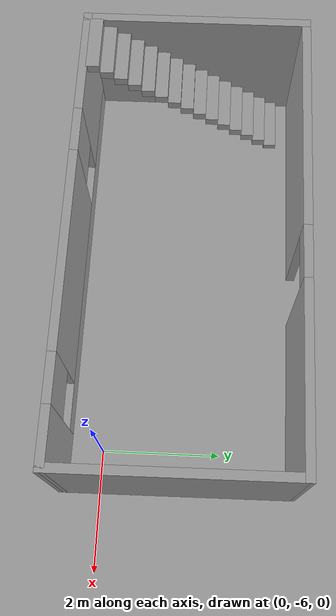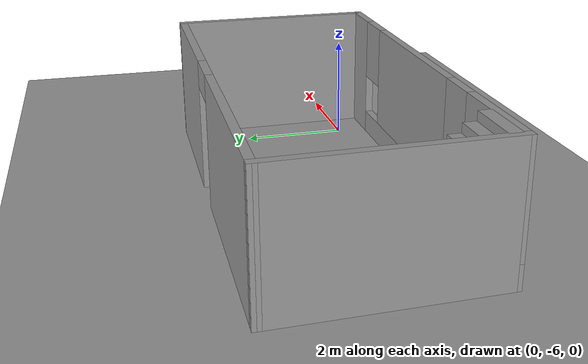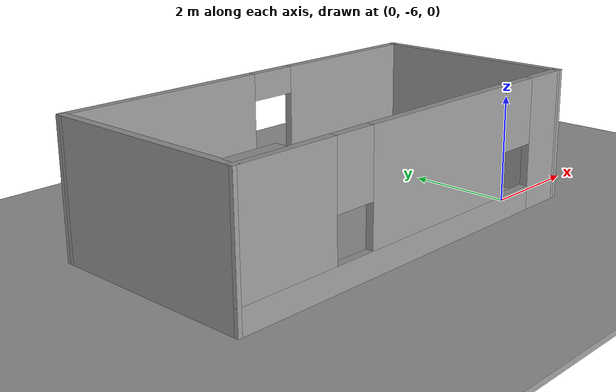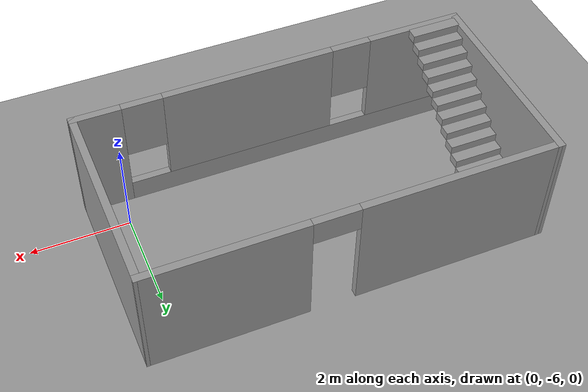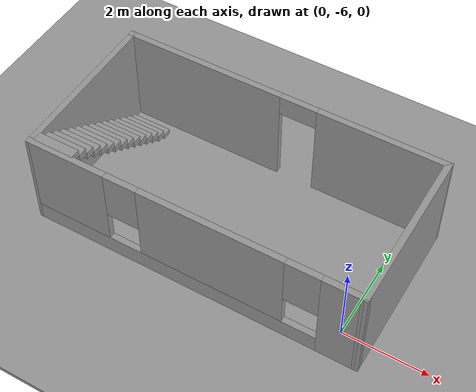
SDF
<sdf version="1.7">
 <world name="default">
  <light name="sun" type="directional">
   <pose>0 0 10 0 -0 0</pose>
   <diffuse>0.8 0.8 0.8 1</diffuse>
   <specular>0.2 0.2 0.2 1</specular>
   <attenuation>
    <range>1000</range>
    <constant>0.9</constant>
    <linear>0.01</linear>
    <quadratic>0.001</quadratic>
   </attenuation>
   <direction>-0.5 0.1 -0.9</direction>
   <spot><inner_angle>0</inner_angle><outer_angle>0</outer_angle><falloff>0</falloff></spot>
  </light>
  <model name="ground_plane">
   <static>1</static>
   <link name="link">
    <collision name="collision">
     <geometry><plane><normal>0 0 1</normal><size>100 100</size></plane></geometry>
     <surface>
      <contact><collide_bitmask>65535</collide_bitmask></contact>
      <friction><ode><mu>100</mu><mu2>50</mu2></ode></friction>
     </surface>
    </collision>
    <visual name="visual">
     <cast_shadows>0</cast_shadows>
     <geometry><plane><normal>0 0 1</normal><size>100 100</size></plane></geometry>
     <material>
      <script><uri>file://media/materials/scripts/gazebo.material</uri><name>Gazebo/Grey</name></script>
     </material>
    </visual>
   </link>
  </model>
  <gravity>0 0 -9.8</gravity>
  <magnetic_field>6e-06 2.3e-05 -4.2e-05</magnetic_field>
  <atmosphere type="adiabatic"/>
  <physics type="ode">
   <max_step_size>0.001</max_step_size>
   <real_time_factor>1</real_time_factor>
   <real_time_update_rate>1000</real_time_update_rate>
  </physics>
  <scene><ambient>0.4 0.4 0.4 1</ambient><background>0.7 0.7 0.7 1</background><shadows>1</shadows></scene>
  <spherical_coordinates>
   <surface_model>EARTH_WGS84</surface_model>
   <latitude_deg>0</latitude_deg>
   <longitude_deg>0</longitude_deg>
   <elevation>0</elevation>
   <heading_deg>0</heading_deg>
  </spherical_coordinates>
  <light name="sun" type="directional">
   <pose>0.88028 -1.99699 10 0 -0 0</pose>
   <diffuse>0.8 0.8 0.8 1</diffuse>
   <specular>0.2 0.2 0.2 1</specular>
   <attenuation>
    <range>1000</range>
    <constant>0.9</constant>
    <linear>0.01</linear>
    <quadratic>0.001</quadratic>
   </attenuation>
   <direction>-0.5 0.1 -0.9</direction>
  </light>
  <light name="sun" type="directional">
   <pose>2.79854 -1.5244 10 0 -0 0</pose>
   <diffuse>0.8 0.8 0.8 1</diffuse>
   <specular>0.2 0.2 0.2 1</specular>
   <attenuation>
    <range>1000</range>
    <constant>0.9</constant>
    <linear>0.01</linear>
    <quadratic>0.001</quadratic>
   </attenuation>
   <direction>-0.5 0.1 -0.9</direction>
  </light>
  <model name="ground_plane_0">
   <static>1</static>
   <link name="link">
    <collision name="collision">
     <geometry><plane><normal>0 0 1</normal><size>100 100</size></plane></geometry>
     <surface>
      <contact><collide_bitmask>65535</collide_bitmask></contact>
      <friction><ode><mu>100</mu><mu2>50</mu2></ode></friction>
     </surface>
    </collision>
    <visual name="visual">
     <cast_shadows>0</cast_shadows>
     <geometry><plane><normal>0 0 1</normal><size>100 100</size></plane></geometry>
     <material>
      <script><uri>file://media/materials/scripts/gazebo.material</uri><name>Gazebo/Grey</name></script>
     </material>
    </visual>
   </link>
   <pose>-6.44939 0.368116 0 0 -0 0</pose>
  </model>
  <model name="0418">
   <pose>-3.28178 -3.34776 0 0 -0 0</pose>
   <link name="Stairs_1">
    <visual name="Stairs_1_Visual_0">
     <pose>-3.36673 0.159585 0.083333 0 -0 0</pose>
     <geometry><box><size>1 0.233333 0.166667</size></box></geometry>
     <material>
      <script><uri>file://media/materials/scripts/gazebo.material</uri><name>Gazebo/Grey</name></script>
      <ambient>1 1 1 1</ambient>
     </material>
     <meta><layer>0</layer></meta>
    </visual>
    <collision name="Stairs_1_Collision_0">
     <geometry><box><size>1 0.233333 0.166667</size></box></geometry>
     <pose>-3.36673 0.159585 0.083333 0 -0 0</pose>
    </collision>
    <visual name="Stairs_1_Visual_1">
     <pose>-3.36673 -0.073748 0.25 0 -0 0</pose>
     <geometry><box><size>1 0.233333 0.166667</size></box></geometry>
     <material>
      <script><uri>file://media/materials/scripts/gazebo.material</uri><name>Gazebo/Grey</name></script>
      <ambient>1 1 1 1</ambient>
     </material>
     <meta><layer>0</layer></meta>
    </visual>
    <collision name="Stairs_1_Collision_1">
     <geometry><box><size>1 0.233333 0.166667</size></box></geometry>
     <pose>-3.36673 -0.073748 0.25 0 -0 0</pose>
    </collision>
    <visual name="Stairs_1_Visual_2">
     <pose>-3.36673 -0.307081 0.416667 0 -0 0</pose>
     <geometry><box><size>1 0.233333 0.166667</size></box></geometry>
     <material>
      <script><uri>file://media/materials/scripts/gazebo.material</uri><name>Gazebo/Grey</name></script>
      <ambient>1 1 1 1</ambient>
     </material>
     <meta><layer>0</layer></meta>
    </visual>
    <collision name="Stairs_1_Collision_2">
     <geometry><box><size>1 0.233333 0.166667</size></box></geometry>
     <pose>-3.36673 -0.307081 0.416667 0 -0 0</pose>
    </collision>
    <visual name="Stairs_1_Visual_3">
     <pose>-3.36673 -0.540415 0.583333 0 -0 0</pose>
     <geometry><box><size>1 0.233333 0.166667</size></box></geometry>
     <material>
      <script><uri>file://media/materials/scripts/gazebo.material</uri><name>Gazebo/Grey</name></script>
      <ambient>1 1 1 1</ambient>
     </material>
     <meta><layer>0</layer></meta>
    </visual>
    <collision name="Stairs_1_Collision_3">
     <geometry><box><size>1 0.233333 0.166667</size></box></geometry>
     <pose>-3.36673 -0.540415 0.583333 0 -0 0</pose>
    </collision>
    <visual name="Stairs_1_Visual_4">
     <pose>-3.36673 -0.773748 0.75 0 -0 0</pose>
     <geometry><box><size>1 0.233333 0.166667</size></box></geometry>
     <material>
      <script><uri>file://media/materials/scripts/gazebo.material</uri><name>Gazebo/Grey</name></script>
      <ambient>1 1 1 1</ambient>
     </material>
     <meta><layer>0</layer></meta>
    </visual>
    <collision name="Stairs_1_Collision_4">
     <geometry><box><size>1 0.233333 0.166667</size></box></geometry>
     <pose>-3.36673 -0.773748 0.75 0 -0 0</pose>
    </collision>
    <visual name="Stairs_1_Visual_5">
     <pose>-3.36673 -1.00708 0.916667 0 -0 0</pose>
     <geometry><box><size>1 0.233333 0.166667</size></box></geometry>
     <material>
      <script><uri>file://media/materials/scripts/gazebo.material</uri><name>Gazebo/Grey</name></script>
      <ambient>1 1 1 1</ambient>
     </material>
     <meta><layer>0</layer></meta>
    </visual>
    <collision name="Stairs_1_Collision_5">
     <geometry><box><size>1 0.233333 0.166667</size></box></geometry>
     <pose>-3.36673 -1.00708 0.916667 0 -0 0</pose>
    </collision>
    <visual name="Stairs_1_Visual_6">
     <pose>-3.36673 -1.24042 1.08333 0 -0 0</pose>
     <geometry><box><size>1 0.233333 0.166667</size></box></geometry>
     <material>
      <script><uri>file://media/materials/scripts/gazebo.material</uri><name>Gazebo/Grey</name></script>
      <ambient>1 1 1 1</ambient>
     </material>
     <meta><layer>0</layer></meta>
    </visual>
    <collision name="Stairs_1_Collision_6">
     <geometry><box><size>1 0.233333 0.166667</size></box></geometry>
     <pose>-3.36673 -1.24042 1.08333 0 -0 0</pose>
    </collision>
    <visual name="Stairs_1_Visual_7">
     <pose>-3.36673 -1.47375 1.25 0 -0 0</pose>
     <geometry><box><size>1 0.233333 0.166667</size></box></geometry>
     <material>
      <script><uri>file://media/materials/scripts/gazebo.material</uri><name>Gazebo/Grey</name></script>
      <ambient>1 1 1 1</ambient>
     </material>
     <meta><layer>0</layer></meta>
    </visual>
    <collision name="Stairs_1_Collision_7">
     <geometry><box><size>1 0.233333 0.166667</size></box></geometry>
     <pose>-3.36673 -1.47375 1.25 0 -0 0</pose>
    </collision>
    <visual name="Stairs_1_Visual_8">
     <pose>-3.36673 -1.70708 1.41667 0 -0 0</pose>
     <geometry><box><size>1 0.233333 0.166667</size></box></geometry>
     <material>
      <script><uri>file://media/materials/scripts/gazebo.material</uri><name>Gazebo/Grey</name></script>
      <ambient>1 1 1 1</ambient>
     </material>
     <meta><layer>0</layer></meta>
    </visual>
    <collision name="Stairs_1_Collision_8">
     <geometry><box><size>1 0.233333 0.166667</size></box></geometry>
     <pose>-3.36673 -1.70708 1.41667 0 -0 0</pose>
    </collision>
    <visual name="Stairs_1_Visual_9">
     <pose>-3.36673 -1.94042 1.58333 0 -0 0</pose>
     <geometry><box><size>1 0.233333 0.166667</size></box></geometry>
     <material>
      <script><uri>file://media/materials/scripts/gazebo.material</uri><name>Gazebo/Grey</name></script>
      <ambient>1 1 1 1</ambient>
     </material>
     <meta><layer>0</layer></meta>
    </visual>
    <collision name="Stairs_1_Collision_9">
     <geometry><box><size>1 0.233333 0.166667</size></box></geometry>
     <pose>-3.36673 -1.94042 1.58333 0 -0 0</pose>
    </collision>
    <visual name="Stairs_1_Visual_10">
     <pose>-3.36673 -2.17375 1.75 0 -0 0</pose>
     <geometry><box><size>1 0.233333 0.166667</size></box></geometry>
     <material>
      <script><uri>file://media/materials/scripts/gazebo.material</uri><name>Gazebo/Grey</name></script>
      <ambient>1 1 1 1</ambient>
     </material>
     <meta><layer>0</layer></meta>
    </visual>
    <collision name="Stairs_1_Collision_10">
     <geometry><box><size>1 0.233333 0.166667</size></box></geometry>
     <pose>-3.36673 -2.17375 1.75 0 -0 0</pose>
    </collision>
    <visual name="Stairs_1_Visual_11">
     <pose>-3.36673 -2.40708 1.91667 0 -0 0</pose>
     <geometry><box><size>1 0.233333 0.166667</size></box></geometry>
     <material>
      <script><uri>file://media/materials/scripts/gazebo.material</uri><name>Gazebo/Grey</name></script>
      <ambient>1 1 1 1</ambient>
     </material>
     <meta><layer>0</layer></meta>
    </visual>
    <collision name="Stairs_1_Collision_11">
     <geometry><box><size>1 0.233333 0.166667</size></box></geometry>
     <pose>-3.36673 -2.40708 1.91667 0 -0 0</pose>
    </collision>
    <visual name="Stairs_1_Visual_12">
     <pose>-3.36673 -2.64041 2.08333 0 -0 0</pose>
     <geometry><box><size>1 0.233333 0.166667</size></box></geometry>
     <material>
      <script><uri>file://media/materials/scripts/gazebo.material</uri><name>Gazebo/Grey</name></script>
      <ambient>1 1 1 1</ambient>
     </material>
     <meta><layer>0</layer></meta>
    </visual>
    <collision name="Stairs_1_Collision_12">
     <geometry><box><size>1 0.233333 0.166667</size></box></geometry>
     <pose>-3.36673 -2.64041 2.08333 0 -0 0</pose>
    </collision>
    <visual name="Stairs_1_Visual_13">
     <pose>-3.36673 -2.87375 2.25 0 -0 0</pose>
     <geometry><box><size>1 0.233333 0.166667</size></box></geometry>
     <material>
      <script><uri>file://media/materials/scripts/gazebo.material</uri><name>Gazebo/Grey</name></script>
      <ambient>1 1 1 1</ambient>
     </material>
     <meta><layer>0</layer></meta>
    </visual>
    <collision name="Stairs_1_Collision_13">
     <geometry><box><size>1 0.233333 0.166667</size></box></geometry>
     <pose>-3.36673 -2.87375 2.25 0 -0 0</pose>
    </collision>
    <visual name="Stairs_1_Visual_14">
     <pose>-3.36673 -3.10708 2.41667 0 -0 0</pose>
     <geometry><box><size>1 0.233333 0.166667</size></box></geometry>
     <material>
      <script><uri>file://media/materials/scripts/gazebo.material</uri><name>Gazebo/Grey</name></script>
      <ambient>1 1 1 1</ambient>
     </material>
     <meta><layer>0</layer></meta>
    </visual>
    <collision name="Stairs_1_Collision_14">
     <geometry><box><size>1 0.233333 0.166667</size></box></geometry>
     <pose>-3.36673 -3.10708 2.41667 0 -0 0</pose>
    </collision>
   </link>
   <link name="Wall_11">
    <pose>0.013225 -3.27224 0 0 -0 3.14159</pose>
    <visual name="Wall_11_Visual_0">
     <pose>-3.50548 0 1.25 0 -0 0</pose>
     <geometry><box><size>0.989033 0.15 2.5</size></box></geometry>
     <material>
      <script><uri>file://media/materials/scripts/gazebo.material</uri><name>Gazebo/Grey</name></script>
      <ambient>1 1 1 1</ambient>
     </material>
     <meta><layer>0</layer></meta>
    </visual>
    <collision name="Wall_11_Collision_0">
     <geometry><box><size>0.989033 0.15 2.5</size></box></geometry>
     <pose>-3.50548 0 1.25 0 -0 0</pose>
    </collision>
    <visual name="Wall_11_Visual_1">
     <pose>0.494516 0 0.25 0 -0 0</pose>
     <geometry><box><size>7.01097 0.15 0.5</size></box></geometry>
     <material>
      <script><uri>file://media/materials/scripts/gazebo.material</uri><name>Gazebo/Grey</name></script>
      <ambient>1 1 1 1</ambient>
     </material>
     <meta><layer>0</layer></meta>
    </visual>
    <collision name="Wall_11_Collision_1">
     <geometry><box><size>7.01097 0.15 0.5</size></box></geometry>
     <pose>0.494516 0 0.25 0 -0 0</pose>
    </collision>
    <visual name="Wall_11_Visual_2">
     <pose>-0.488355 0 1.5 0 -0 0</pose>
     <geometry><box><size>3.44523 0.15 2</size></box></geometry>
     <material>
      <script><uri>file://media/materials/scripts/gazebo.material</uri><name>Gazebo/Grey</name></script>
      <ambient>1 1 1 1</ambient>
     </material>
     <meta><layer>0</layer></meta>
    </visual>
    <collision name="Wall_11_Collision_2">
     <geometry><box><size>3.44523 0.15 2</size></box></geometry>
     <pose>-0.488355 0 1.5 0 -0 0</pose>
    </collision>
    <visual name="Wall_11_Visual_3">
     <pose>3.01713 0 1.5 0 -0 0</pose>
     <geometry><box><size>1.96574 0.15 2</size></box></geometry>
     <material>
      <script><uri>file://media/materials/scripts/gazebo.material</uri><name>Gazebo/Grey</name></script>
      <ambient>1 1 1 1</ambient>
     </material>
     <meta><layer>0</layer></meta>
    </visual>
    <collision name="Wall_11_Collision_3">
     <geometry><box><size>1.96574 0.15 2</size></box></geometry>
     <pose>3.01713 0 1.5 0 -0 0</pose>
    </collision>
    <visual name="Wall_11_Visual_4">
     <pose>-2.61097 0 1.9 0 -0 0</pose>
     <geometry><box><size>0.8 0.15 1.2</size></box></geometry>
     <material>
      <script><uri>file://media/materials/scripts/gazebo.material</uri><name>Gazebo/Grey</name></script>
      <ambient>1 1 1 1</ambient>
     </material>
     <meta><layer>0</layer></meta>
    </visual>
    <collision name="Wall_11_Collision_4">
     <geometry><box><size>0.8 0.15 1.2</size></box></geometry>
     <pose>-2.61097 0 1.9 0 -0 0</pose>
    </collision>
    <visual name="Wall_11_Visual_5">
     <pose>1.63426 0 1.9 0 -0 0</pose>
     <geometry><box><size>0.8 0.15 1.2</size></box></geometry>
     <material>
      <script><uri>file://media/materials/scripts/gazebo.material</uri><name>Gazebo/Grey</name></script>
      <ambient>1 1 1 1</ambient>
     </material>
     <meta><layer>0</layer></meta>
    </visual>
    <collision name="Wall_11_Collision_5">
     <geometry><box><size>0.8 0.15 1.2</size></box></geometry>
     <pose>1.63426 0 1.9 0 -0 0</pose>
    </collision>
   </link>
   <link name="Wall_12">
    <collision name="Wall_12_Collision">
     <geometry><box><size>4.00009 0.15 2.5</size></box></geometry>
     <pose>0 0 1.25 0 -0 0</pose>
    </collision>
    <visual name="Wall_12_Visual">
     <pose>0 0 1.25 0 -0 0</pose>
     <geometry><box><size>4.00009 0.15 2.5</size></box></geometry>
     <material>
      <script><uri>file://media/materials/scripts/gazebo.material</uri><name>Gazebo/Grey</name></script>
      <ambient>1 1 1 1</ambient>
     </material>
     <meta><layer>0</layer></meta>
    </visual>
    <pose>-3.925 -1.34724 0 0 -0 1.57767</pose>
   </link>
   <link name="Wall_5">
    <pose>-0.013225 0.577757 0 0 -0 0</pose>
    <visual name="Wall_5_Visual_0">
     <pose>-2.01058 0 1.25 0 -0 0</pose>
     <geometry><box><size>3.97884 0.15 2.5</size></box></geometry>
     <material>
      <script><uri>file://media/materials/scripts/gazebo.material</uri><name>Gazebo/Grey</name></script>
      <ambient>1 1 1 1</ambient>
     </material>
     <meta><layer>0</layer></meta>
    </visual>
    <collision name="Wall_5_Collision_0">
     <geometry><box><size>3.97884 0.15 2.5</size></box></geometry>
     <pose>-2.01058 0 1.25 0 -0 0</pose>
    </collision>
    <visual name="Wall_5_Visual_1">
     <pose>2.43942 0 1.25 0 -0 0</pose>
     <geometry><box><size>3.12116 0.15 2.5</size></box></geometry>
     <material>
      <script><uri>file://media/materials/scripts/gazebo.material</uri><name>Gazebo/Grey</name></script>
      <ambient>1 1 1 1</ambient>
     </material>
     <meta><layer>0</layer></meta>
    </visual>
    <collision name="Wall_5_Collision_1">
     <geometry><box><size>3.12116 0.15 2.5</size></box></geometry>
     <pose>2.43942 0 1.25 0 -0 0</pose>
    </collision>
    <visual name="Wall_5_Visual_2">
     <pose>0.428843 0 2.25 0 -0 0</pose>
     <geometry><box><size>0.9 0.15 0.5</size></box></geometry>
     <material>
      <script><uri>file://media/materials/scripts/gazebo.material</uri><name>Gazebo/Grey</name></script>
      <ambient>1 1 1 1</ambient>
     </material>
     <meta><layer>0</layer></meta>
    </visual>
    <collision name="Wall_5_Collision_2">
     <geometry><box><size>0.9 0.15 0.5</size></box></geometry>
     <pose>0.428843 0 2.25 0 -0 0</pose>
    </collision>
   </link>
   <link name="Wall_6">
    <collision name="Wall_6_Collision">
     <geometry><box><size>4 0.15 2.5</size></box></geometry>
     <pose>0 0 1.25 0 -0 0</pose>
    </collision>
    <visual name="Wall_6_Visual">
     <pose>0 0 1.25 0 -0 0</pose>
     <geometry><box><size>4 0.15 2.5</size></box></geometry>
     <material>
      <script><uri>file://media/materials/scripts/gazebo.material</uri><name>Gazebo/Grey</name></script>
      <ambient>1 1 1 1</ambient>
     </material>
     <meta><layer>0</layer></meta>
    </visual>
    <pose>3.925 -1.34724 0 0 -0 -1.56393</pose>
   </link>
   <static>1</static>
  </model>
 </world>
</sdf>
